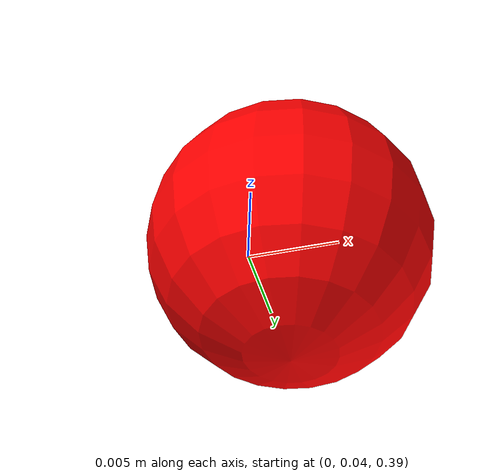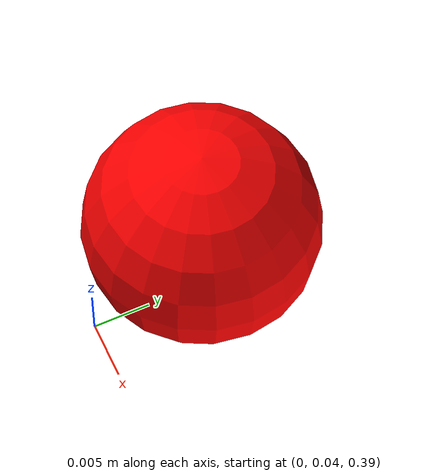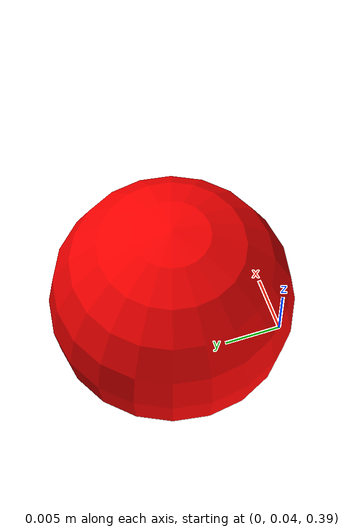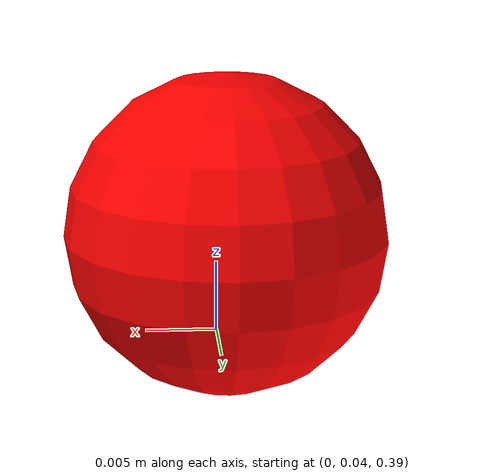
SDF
<?xml version="1.0"?>
<sdf version="1.7">
  <model name="sphere5_model">
    <link name="sphere5_base">
      <visual name="visual">
        <pose>0.0, 0.05, 0.4 0 0 0</pose>
        <geometry>
            <sphere>
              <radius>0.01</radius>
            </sphere>
        </geometry>
        <material>
          <ambient>1 0 0 1</ambient>
          <diffuse>1 0 0 1</diffuse>
          <specular>1 0 0 1</specular>
          <emissive>1 0 0 1</emissive>
        </material>
      </visual>
    </link>
    <frame name="sphere5_center">
      <pose relative_to="sphere5_base">0 0 0 0 0 0</pose>
    </frame>
  </model>
</sdf>
